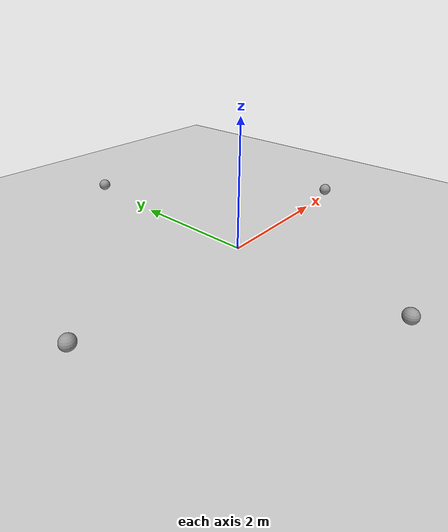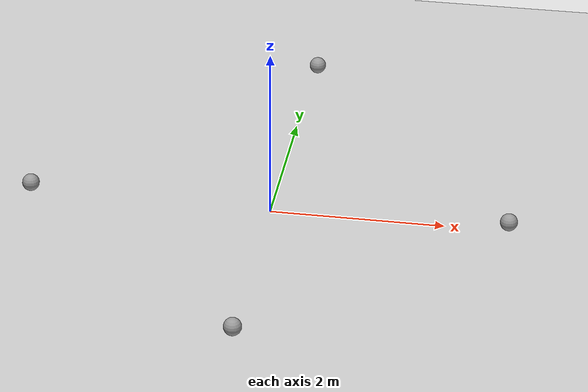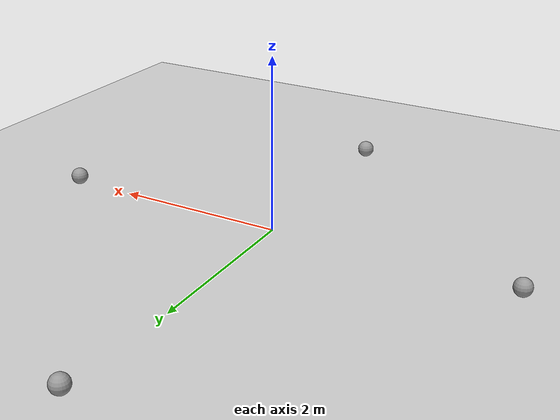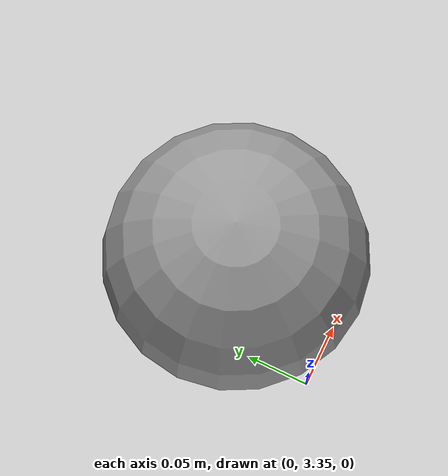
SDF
<sdf version="1.6">
 <world name="default">
  <model name="ground_plane">
   <static>1</static>
   <link name="link">
    <collision name="collision">
     <geometry><plane><normal>0 0 1</normal><size>100 100</size></plane></geometry>
     <surface><friction><ode><mu>100</mu><mu2>50</mu2></ode></friction></surface>
    </collision>
    <visual name="visual">
     <cast_shadows>0</cast_shadows>
     <geometry><plane><normal>0 0 1</normal><size>100 100</size></plane></geometry>
     <material>
      <script><uri>file://media/materials/scripts/gazebo.material</uri><name>Gazebo/Grey</name></script>
     </material>
    </visual>
   </link>
  </model>
  <light name="sun" type="directional">
   <pose>0 0 10 0 -0 0</pose>
   <diffuse>0.8 0.8 0.8 1</diffuse>
   <specular>0.2 0.2 0.2 1</specular>
   <attenuation>
    <range>1000</range>
    <constant>0.9</constant>
    <linear>0.01</linear>
    <quadratic>0.001</quadratic>
   </attenuation>
   <direction>-0.5 0.1 -0.9</direction>
  </light>
  <gravity>0 0 -9.8</gravity>
  <magnetic_field>6e-06 2.3e-05 -4.2e-05</magnetic_field>
  <atmosphere type="adiabatic"/>
  <physics name="default_physics" default="0" type="ode">
   <max_step_size>0.001</max_step_size>
   <real_time_factor>1</real_time_factor>
   <real_time_update_rate>1000</real_time_update_rate>
  </physics>
  <scene><ambient>0.4 0.4 0.4 1</ambient><background>0.7 0.7 0.7 1</background><shadows>1</shadows></scene>
  <spherical_coordinates>
   <surface_model>EARTH_WGS84</surface_model>
   <latitude_deg>0</latitude_deg>
   <longitude_deg>0</longitude_deg>
   <elevation>0</elevation>
   <heading_deg>0</heading_deg>
  </spherical_coordinates>
  <model name="my_ball">
   <link name="link_0">
    <inertial>
     <mass>1</mass>
     <inertia><ixx>0.1</ixx><ixy>0</ixy><ixz>0</ixz><iyy>0.1</iyy><iyz>0</iyz><izz>0.1</izz></inertia>
    </inertial>
    <visual name="visual">
     <geometry><sphere><radius>0.1</radius></sphere></geometry>
     <material>
      <lighting>1</lighting>
      <script><uri>file://media/materials/scripts/gazebo.material</uri><name>Gazebo/Grey</name></script>
      <shader type="pixel"><normal_map>__default__</normal_map></shader>
      <ambient>1 1 1 1</ambient>
      <diffuse>1 1 1 1</diffuse>
      <specular>1 1 1 1</specular>
      <emissive>1 1 1 1</emissive>
     </material>
    </visual>
    <collision name="collision">
     <geometry><sphere><radius>0.1</radius></sphere></geometry>
     <surface>
      <friction>
       <ode><mu>1</mu><mu2>1</mu2><fdir1>0 0 0</fdir1><slip1>0</slip1><slip2>0</slip2></ode>
       <torsional>
        <coefficient>1</coefficient>
        <patch_radius>0</patch_radius>
        <surface_radius>0</surface_radius>
        <use_patch_radius>1</use_patch_radius>
        <ode><slip>0</slip></ode>
       </torsional>
      </friction>
      <bounce><restitution_coefficient>0</restitution_coefficient><threshold>1e+06</threshold></bounce>
      <contact>
       <collide_without_contact>0</collide_without_contact>
       <collide_without_contact_bitmask>1</collide_without_contact_bitmask>
       <collide_bitmask>1</collide_bitmask>
       <ode>
        <soft_cfm>0</soft_cfm>
        <soft_erp>0.2</soft_erp>
        <kp>1e+13</kp>
        <kd>1</kd>
        <max_vel>0.01</max_vel>
        <min_depth>0</min_depth>
       </ode>
       <bullet>
        <split_impulse>1</split_impulse>
        <split_impulse_penetration_threshold>-0.01</split_impulse_penetration_threshold>
        <soft_cfm>0</soft_cfm>
        <soft_erp>0.2</soft_erp>
        <kp>1e+13</kp>
        <kd>1</kd>
       </bullet>
      </contact>
     </surface>
    </collision>
   </link>
   <static>0</static>
   <pose>2.72294 0.042529 0.1 0 -0 0</pose>
  </model>
  <model name="my_ball_0">
   <link name="link_0">
    <inertial>
     <mass>1</mass>
     <inertia><ixx>0.1</ixx><ixy>0</ixy><ixz>0</ixz><iyy>0.1</iyy><iyz>0</iyz><izz>0.1</izz></inertia>
    </inertial>
    <visual name="visual">
     <geometry><sphere><radius>0.1</radius></sphere></geometry>
     <material>
      <lighting>1</lighting>
      <script><uri>file://media/materials/scripts/gazebo.material</uri><name>Gazebo/Grey</name></script>
      <shader type="pixel"><normal_map>__default__</normal_map></shader>
      <ambient>1 1 1 1</ambient>
      <diffuse>1 1 1 1</diffuse>
      <specular>1 1 1 1</specular>
      <emissive>1 1 1 1</emissive>
     </material>
    </visual>
    <collision name="collision">
     <geometry><sphere><radius>0.1</radius></sphere></geometry>
     <surface>
      <friction>
       <ode><mu>1</mu><mu2>1</mu2><fdir1>0 0 0</fdir1><slip1>0</slip1><slip2>0</slip2></ode>
       <torsional>
        <coefficient>1</coefficient>
        <patch_radius>0</patch_radius>
        <surface_radius>0</surface_radius>
        <use_patch_radius>1</use_patch_radius>
        <ode><slip>0</slip></ode>
       </torsional>
      </friction>
      <bounce><restitution_coefficient>0</restitution_coefficient><threshold>1e+06</threshold></bounce>
      <contact>
       <collide_without_contact>0</collide_without_contact>
       <collide_without_contact_bitmask>1</collide_without_contact_bitmask>
       <collide_bitmask>1</collide_bitmask>
       <ode>
        <soft_cfm>0</soft_cfm>
        <soft_erp>0.2</soft_erp>
        <kp>1e+13</kp>
        <kd>1</kd>
        <max_vel>0.01</max_vel>
        <min_depth>0</min_depth>
       </ode>
       <bullet>
        <split_impulse>1</split_impulse>
        <split_impulse_penetration_threshold>-0.01</split_impulse_penetration_threshold>
        <soft_cfm>0</soft_cfm>
        <soft_erp>0.2</soft_erp>
        <kp>1e+13</kp>
        <kd>1</kd>
       </bullet>
      </contact>
     </surface>
    </collision>
   </link>
   <static>0</static>
   <pose>0.046614 3.43313 0.1 0 -0 0</pose>
  </model>
  <model name="my_ball_1">
   <link name="link_0">
    <inertial>
     <mass>1</mass>
     <inertia><ixx>0.1</ixx><ixy>0</ixy><ixz>0</ixz><iyy>0.1</iyy><iyz>0</iyz><izz>0.1</izz></inertia>
    </inertial>
    <visual name="visual">
     <geometry><sphere><radius>0.1</radius></sphere></geometry>
     <material>
      <lighting>1</lighting>
      <script><uri>file://media/materials/scripts/gazebo.material</uri><name>Gazebo/Grey</name></script>
      <shader type="pixel"><normal_map>__default__</normal_map></shader>
      <ambient>1 1 1 1</ambient>
      <diffuse>1 1 1 1</diffuse>
      <specular>1 1 1 1</specular>
      <emissive>1 1 1 1</emissive>
     </material>
    </visual>
    <collision name="collision">
     <geometry><sphere><radius>0.1</radius></sphere></geometry>
     <surface>
      <friction>
       <ode><mu>1</mu><mu2>1</mu2><fdir1>0 0 0</fdir1><slip1>0</slip1><slip2>0</slip2></ode>
       <torsional>
        <coefficient>1</coefficient>
        <patch_radius>0</patch_radius>
        <surface_radius>0</surface_radius>
        <use_patch_radius>1</use_patch_radius>
        <ode><slip>0</slip></ode>
       </torsional>
      </friction>
      <bounce><restitution_coefficient>0</restitution_coefficient><threshold>1e+06</threshold></bounce>
      <contact>
       <collide_without_contact>0</collide_without_contact>
       <collide_without_contact_bitmask>1</collide_without_contact_bitmask>
       <collide_bitmask>1</collide_bitmask>
       <ode>
        <soft_cfm>0</soft_cfm>
        <soft_erp>0.2</soft_erp>
        <kp>1e+13</kp>
        <kd>1</kd>
        <max_vel>0.01</max_vel>
        <min_depth>0</min_depth>
       </ode>
       <bullet>
        <split_impulse>1</split_impulse>
        <split_impulse_penetration_threshold>-0.01</split_impulse_penetration_threshold>
        <soft_cfm>0</soft_cfm>
        <soft_erp>0.2</soft_erp>
        <kp>1e+13</kp>
        <kd>1</kd>
       </bullet>
      </contact>
     </surface>
    </collision>
   </link>
   <static>0</static>
   <pose>-2.81835 0.026535 0.1 0 -0 0</pose>
  </model>
  <model name="my_ball_2">
   <link name="link_0">
    <inertial>
     <mass>1</mass>
     <inertia><ixx>0.1</ixx><ixy>0</ixy><ixz>0</ixz><iyy>0.1</iyy><iyz>0</iyz><izz>0.1</izz></inertia>
    </inertial>
    <visual name="visual">
     <geometry><sphere><radius>0.1</radius></sphere></geometry>
     <material>
      <lighting>1</lighting>
      <script><uri>file://media/materials/scripts/gazebo.material</uri><name>Gazebo/Grey</name></script>
      <shader type="pixel"><normal_map>__default__</normal_map></shader>
      <ambient>1 1 1 1</ambient>
      <diffuse>1 1 1 1</diffuse>
      <specular>1 1 1 1</specular>
      <emissive>1 1 1 1</emissive>
     </material>
    </visual>
    <collision name="collision">
     <geometry><sphere><radius>0.1</radius></sphere></geometry>
     <surface>
      <friction>
       <ode><mu>1</mu><mu2>1</mu2><fdir1>0 0 0</fdir1><slip1>0</slip1><slip2>0</slip2></ode>
       <torsional>
        <coefficient>1</coefficient>
        <patch_radius>0</patch_radius>
        <surface_radius>0</surface_radius>
        <use_patch_radius>1</use_patch_radius>
        <ode><slip>0</slip></ode>
       </torsional>
      </friction>
      <bounce><restitution_coefficient>0</restitution_coefficient><threshold>1e+06</threshold></bounce>
      <contact>
       <collide_without_contact>0</collide_without_contact>
       <collide_without_contact_bitmask>1</collide_without_contact_bitmask>
       <collide_bitmask>1</collide_bitmask>
       <ode>
        <soft_cfm>0</soft_cfm>
        <soft_erp>0.2</soft_erp>
        <kp>1e+13</kp>
        <kd>1</kd>
        <max_vel>0.01</max_vel>
        <min_depth>0</min_depth>
       </ode>
       <bullet>
        <split_impulse>1</split_impulse>
        <split_impulse_penetration_threshold>-0.01</split_impulse_penetration_threshold>
        <soft_cfm>0</soft_cfm>
        <soft_erp>0.2</soft_erp>
        <kp>1e+13</kp>
        <kd>1</kd>
       </bullet>
      </contact>
     </surface>
    </collision>
   </link>
   <static>0</static>
   <pose>0.01124 -2.52847 0.1 0 -0 0</pose>
  </model>
 </world>
</sdf>
